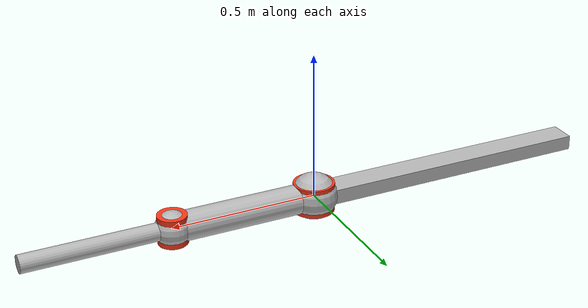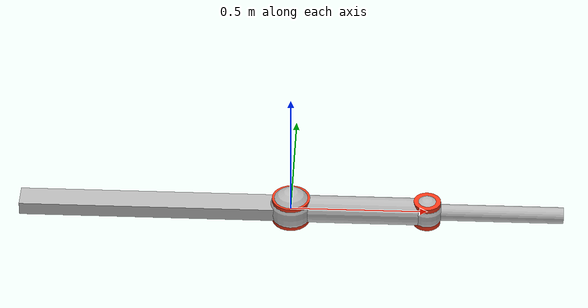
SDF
<?xml version='1.0'?>
<sdf version='1.9'>
    <world name="planar_world">
    <model name="PRR">
        <static>false</static>

        <link name="l1">

            <pose>-0.5 0 0  0 1.5707 0</pose>
            <inertial>
                <inertia>
                    <ixx>1</ixx>
                    <ixy>0</ixy>
                    <ixz>0</ixz>
                    <iyy>1</iyy>
                    <iyz>0</iyz>
                    <izz>1</izz>
                </inertia>
                <mass>1.0</mass>
            </inertial>
            <collision name="l1_collision">
                <geometry>
                    <box>
                        <size>0.05 0.09 1</size>
                    </box>
                </geometry>
            </collision>

            <visual name="l1_visual">
                <geometry>
                    <box>
                        <size>0.05 0.09 1</size>
                    </box>
                </geometry>
            </visual>

        </link>

        <link name="l2">
            <pose relative_to='l1'>0 0 0.75 0 0 0</pose>
            <inertial>
                <inertia>
                    <ixx>1</ixx>
                    <ixy>0</ixy>
                    <ixz>0</ixz>
                    <iyy>1</iyy>
                    <iyz>0</iyz>
                    <izz>1</izz>
                </inertia>
                <mass>1.0</mass>
            </inertial>
            <!-- the 0.75 comes from h/2 of box + h/2 of cylinder-->
            <collision name="l2_collision">
                <geometry>
                    <cylinder>
                        <radius>0.05</radius>
                        <length>0.5</length>
                    </cylinder>
                </geometry>
            </collision>

            <visual name="l2_visual">
                <geometry>
                    <cylinder>
                        <radius>0.05</radius>
                        <length>0.5</length>
                    </cylinder>
                </geometry>
            </visual>

            <visual name="l2_joint_case">

                <pose>0 0 -0.25 0 -1.5707  0 </pose>
                <geometry>
                    <cylinder>
                        <radius>0.07</radius>
                        <length>0.10</length>
                    </cylinder>
                </geometry>
                <material>
                    <diffuse>0.98 0.22 0.1 1</diffuse>
                </material>
            </visual>
            <visual name="l2_joint_case_pt2">
                <pose>0 0 -0.25 0 -1.5707  0 </pose>
                <geometry>
                    <sphere>
                        <radius>0.08</radius>
                    </sphere>
                </geometry>
            </visual>
        </link>

        <link name="l3">
            <pose relative_to='l2'>0 0 0.5 0 0 0</pose>
            <inertial>
                <inertia>
                    <ixx>1</ixx>
                    <ixy>0</ixy>
                    <ixz>0</ixz>
                    <iyy>1</iyy>
                    <iyz>0</iyz>
                    <izz>1</izz>
                </inertia>
                <mass>1.0</mass>
            </inertial>
            <collision name="l3_collision">
                <geometry>
                    <cylinder>
                        <radius>0.07</radius>
                        <length>0.5</length>
                    </cylinder>
                </geometry>
            </collision>

            <visual name="l3_visual">
                <geometry>
                    <cylinder>
                        <radius>0.03</radius>
                        <length>0.5</length>
                    </cylinder>
                </geometry>
            </visual>
            <visual name="l3_joint_case">
                <pose>0 0 -0.25 0 -1.5707 0</pose>
                <geometry>
                    <cylinder>
                        <radius>0.05</radius>
                        <length>0.1</length>
                    </cylinder>
                </geometry>
                 <material>
                    <diffuse>0.98 0.22 0.1 1</diffuse>
                </material>
            </visual>
            <visual name="l3_joint_case_pt2">
                <pose>0 0 -0.25 0 -1.5707 0</pose>
                <geometry>
                    <sphere>
                        <radius>0.06</radius>
                    </sphere>
                </geometry>
            </visual>
        </link>

        <joint name='q1' type="prismatic">
            <pose relative_to='l1'>0 0 0.5 0 0 0</pose>
            <parent>world</parent>
            <child>l1</child>
            <axis>
                <xyz>0 0 1</xyz>
                <limit>
                    <lower>-0.5</lower>
                    <upper>0.5</upper>
                </limit>
            </axis>
        </joint>

        <joint name='q2' type='revolute'>
            <pose relative_to="l2">0 0 -0.25 0 -1.5707 0</pose>
            <parent>l1</parent>
            <child>l2</child>
            <axis>
                <xyz>0 0 1</xyz>

            </axis>
        </joint>

        <joint name='q3' type='revolute'>
            <pose>0 0 -0.25 0 -1.5707 0 </pose>
            <parent>l2</parent>
            <child>l3</child>

            <axis>
                <xyz>0 0 1</xyz>

            </axis>
        </joint>

    </model>
    </world>
</sdf>
